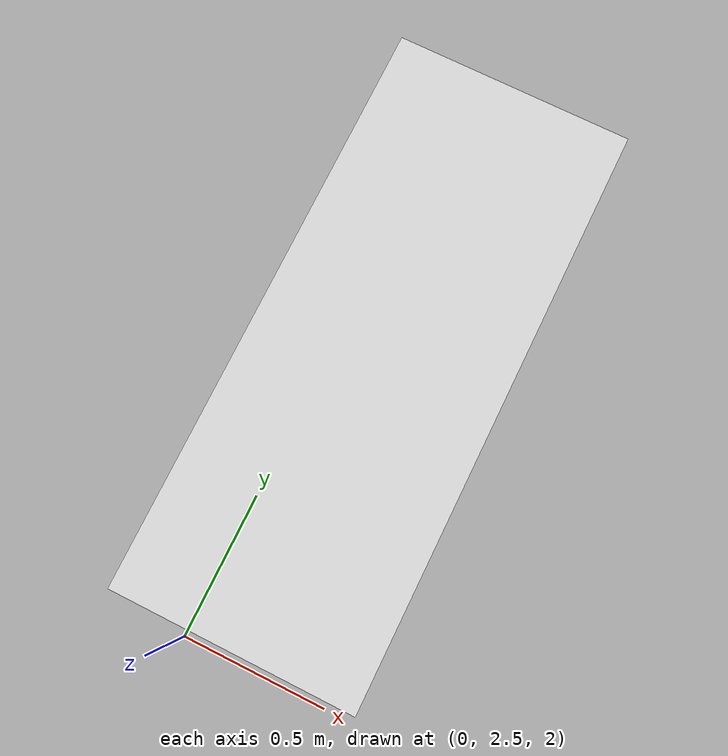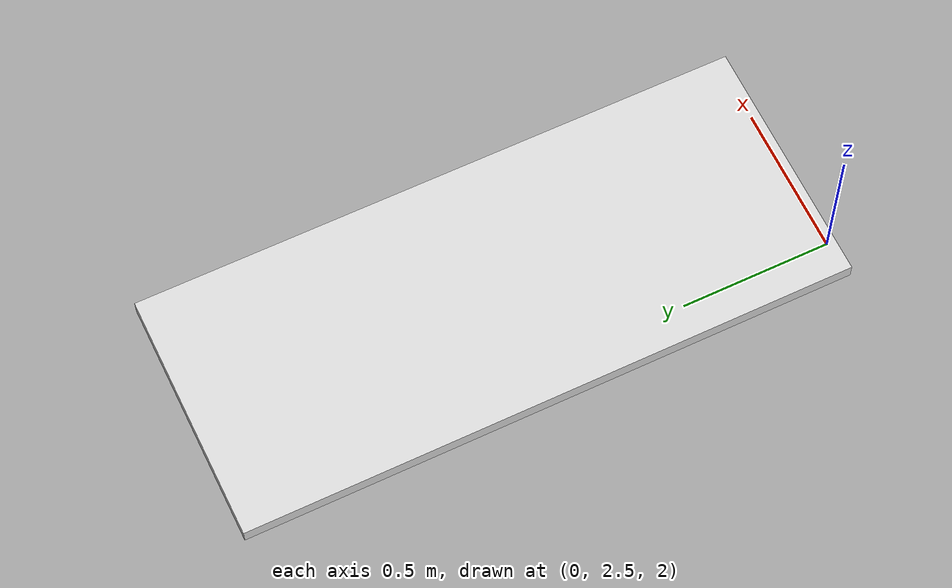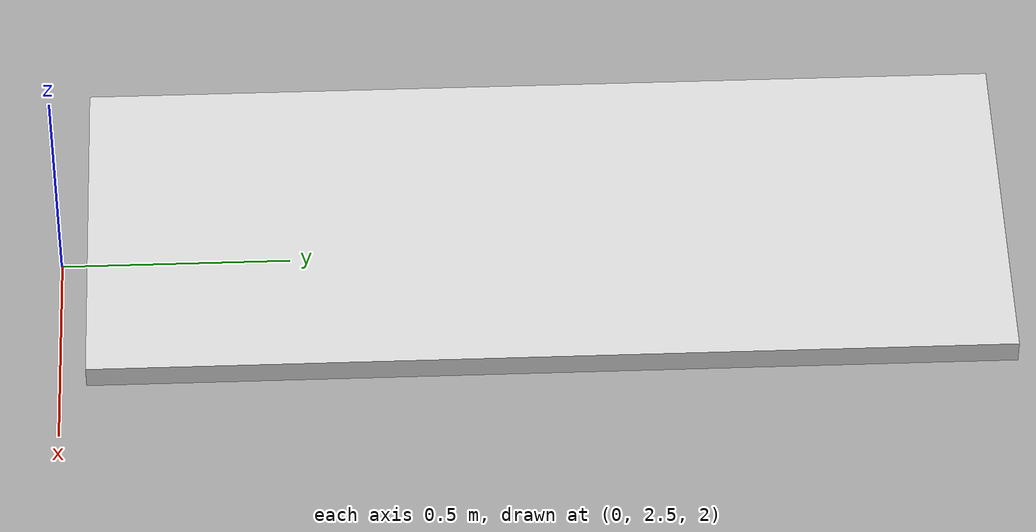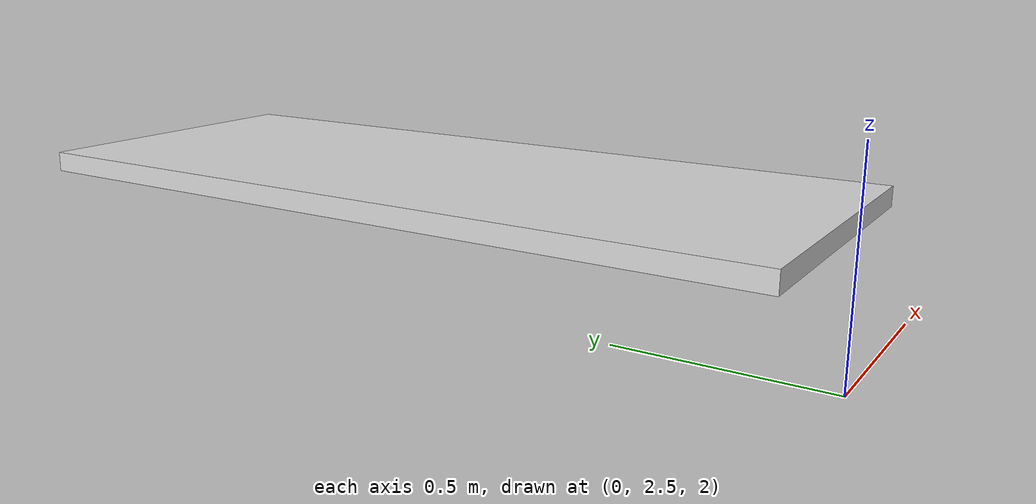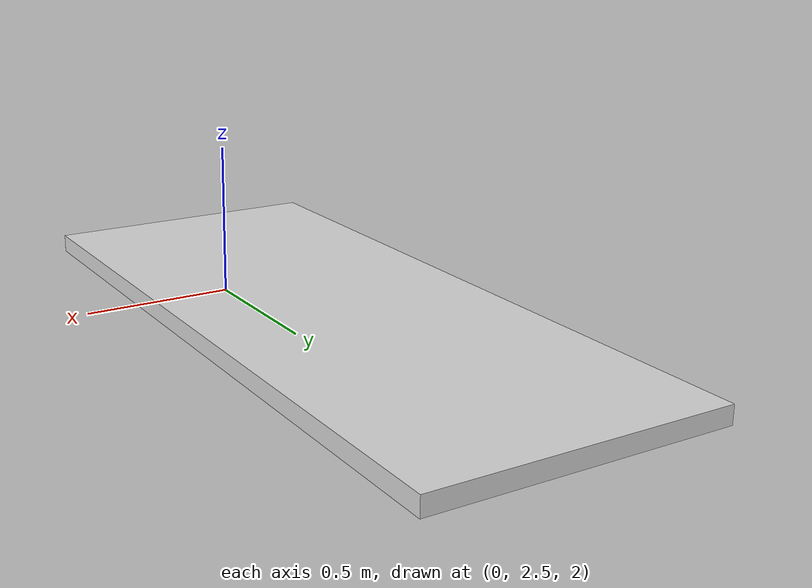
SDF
<?xml version="1.0" ?>
<!-- tmp sdf file generated from LISDF -->
<sdf version="1.9">
  <world name="tmp_world">

<model name="shelf_lower">
  <static>True</static>
  <pose>0.18000000715255737 3.553999900817871 2.2739999294281006 0.0 -0.0 0.0</pose>
  <link name="box">

    <inertial>
      <mass>0</mass>
      <pose>0.0 0.0 0.0 0.0 -0.0 0.0</pose>
      <inertia>
        <ixx>0</ixx>
        <ixy>0</ixy>
        <ixz>0</ixz>
        <iyy>0</iyy>
        <iyz>0</iyz>
        <izz>0</izz>
      </inertia>
    </inertial>
    <collision name="box_collision">>
      <pose>0.0 0.0 0.0 0.0 -0.0 0.0</pose>
      <geometry>
        <box>
          <size>0.8069999814033508 1.9609999656677246 0.05000000074505806</size>
        </box>
      </geometry>

    </collision>
    <visual name="box_visual">
      <pose>0.0 0.0 0.0 0.0 -0.0 0.0</pose>
      <geometry>
        <box>
          <size>0.8069999814033508 1.9609999656677246 0.05000000074505806</size>
        </box>
      </geometry>
      <material>
        <ambient>1.0 1.0 1.0 1.0</ambient>
        <diffuse>0.8500000238418579 0.8500000238418579 0.8500000238418579 1.0</diffuse>
        <specular>0.0 0.0 0.0 1.0</specular>
        <emissive>0.0 0.0 0.0 1.0</emissive>
      </material>
      <cast_shadows>True</cast_shadows>
    </visual>
    <self_collide>True</self_collide>
  </link>

</model>

  </world>
</sdf>
